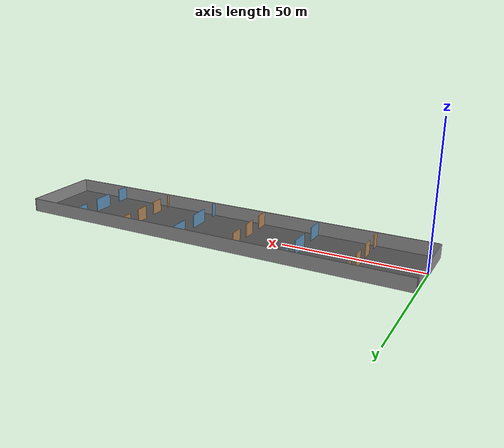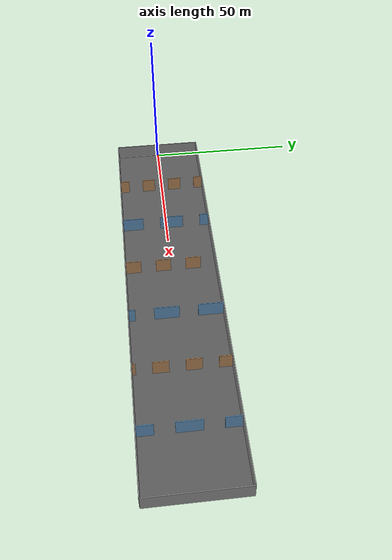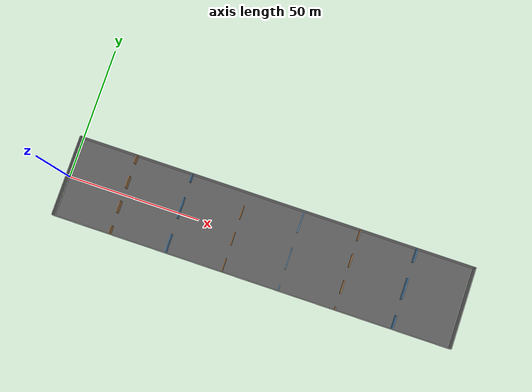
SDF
<?xml version="1.0" ?>
<sdf version="1.5">
  <world name="default">
    <include>
      <uri>model://sun</uri>
    </include>

    <scene>
      <ambient>0.45 0.45 0.45 1</ambient>
      <background>0.82 0.88 0.95 1</background>
      <shadows>true</shadows>
    </scene>

    <gui fullscreen="0">
      <camera name="user_camera">
        <pose>75 0 90 0 1.35 0</pose>
        <view_controller>fps</view_controller>
        <projection_type>perspective</projection_type>
      </camera>
    </gui>

    <physics name="default_physics" default="0" type="ode">
      <gravity>0 0 -9.8066</gravity>
      <ode>
        <solver>
          <type>quick</type>
          <iters>10</iters>
          <sor>1.3</sor>
          <use_dynamic_moi_rescaling>0</use_dynamic_moi_rescaling>
        </solver>
        <constraints>
          <cfm>0</cfm>
          <erp>0.2</erp>
          <contact_max_correcting_vel>100</contact_max_correcting_vel>
          <contact_surface_layer>0.001</contact_surface_layer>
        </constraints>
      </ode>
      <max_step_size>0.004</max_step_size>
      <real_time_factor>1</real_time_factor>
      <real_time_update_rate>250</real_time_update_rate>
      <magnetic_field>6.0e-6 2.3e-5 -4.2e-5</magnetic_field>
    </physics>

    <model name="corridor_floor">
      <static>true</static>
      <pose>75 0 0.01 0 0 0</pose>
      <link name="link">
        <collision name="collision">
          <geometry>
            <box>
              <size>150 30 0.02</size>
            </box>
          </geometry>
        </collision>
        <visual name="visual">
          <geometry>
            <box>
              <size>150 30 0.02</size>
            </box>
          </geometry>
          <material>
            <ambient>0.25 0.25 0.25 1</ambient>
            <diffuse>0.35 0.35 0.35 1</diffuse>
          </material>
        </visual>
      </link>
    </model>

    <model name="left_wall">
      <static>true</static>
      <pose>75 15.15 2.5 0 0 0</pose>
      <link name="link">
        <collision name="collision">
          <geometry>
            <box>
              <size>150 0.3 5</size>
            </box>
          </geometry>
        </collision>
        <visual name="visual">
          <geometry>
            <box>
              <size>150 0.3 5</size>
            </box>
          </geometry>
          <material>
            <ambient>0.45 0.45 0.45 1</ambient>
            <diffuse>0.55 0.55 0.55 1</diffuse>
          </material>
        </visual>
      </link>
    </model>

    <model name="right_wall">
      <static>true</static>
      <pose>75 -15.15 2.5 0 0 0</pose>
      <link name="link">
        <collision name="collision">
          <geometry>
            <box>
              <size>150 0.3 5</size>
            </box>
          </geometry>
        </collision>
        <visual name="visual">
          <geometry>
            <box>
              <size>150 0.3 5</size>
            </box>
          </geometry>
          <material>
            <ambient>0.45 0.45 0.45 1</ambient>
            <diffuse>0.55 0.55 0.55 1</diffuse>
          </material>
        </visual>
      </link>
    </model>

    <model name="start_wall">
      <static>true</static>
      <pose>-0.3 0 2.5 0 0 0</pose>
      <link name="link">
        <collision name="collision">
          <geometry>
            <box>
              <size>0.3 30.3 5</size>
            </box>
          </geometry>
        </collision>
        <visual name="visual">
          <geometry>
            <box>
              <size>0.3 30.3 5</size>
            </box>
          </geometry>
          <material>
            <ambient>0.45 0.45 0.45 1</ambient>
            <diffuse>0.55 0.55 0.55 1</diffuse>
          </material>
        </visual>
      </link>
    </model>

    <model name="end_wall">
      <static>true</static>
      <pose>150.3 0 2.5 0 0 0</pose>
      <link name="link">
        <collision name="collision">
          <geometry>
            <box>
              <size>0.3 30.3 5</size>
            </box>
          </geometry>
        </collision>
        <visual name="visual">
          <geometry>
            <box>
              <size>0.3 30.3 5</size>
            </box>
          </geometry>
          <material>
            <ambient>0.45 0.45 0.45 1</ambient>
            <diffuse>0.55 0.55 0.55 1</diffuse>
          </material>
        </visual>
      </link>
    </model>

    <!-- Row 01: 3-slit wall, openings y=[-12,-7], [-2.5,2.5], [7,12] -->
    <model name="slit_row_01_seg_01">
      <static>true</static>
      <pose>21.43 -13.5 2.5 0 0 0</pose>
      <link name="link">
        <collision name="collision">
          <geometry>
            <box>
              <size>0.3 3 5</size>
            </box>
          </geometry>
        </collision>
        <visual name="visual">
          <geometry>
            <box>
              <size>0.3 3 5</size>
            </box>
          </geometry>
          <material>
            <ambient>0.55 0.42 0.30 1</ambient>
            <diffuse>0.70 0.52 0.34 1</diffuse>
          </material>
        </visual>
      </link>
    </model>
    <model name="slit_row_01_seg_02">
      <static>true</static>
      <pose>21.43 -4.75 2.5 0 0 0</pose>
      <link name="link">
        <collision name="collision">
          <geometry>
            <box>
              <size>0.3 4.5 5</size>
            </box>
          </geometry>
        </collision>
        <visual name="visual">
          <geometry>
            <box>
              <size>0.3 4.5 5</size>
            </box>
          </geometry>
          <material>
            <ambient>0.55 0.42 0.30 1</ambient>
            <diffuse>0.70 0.52 0.34 1</diffuse>
          </material>
        </visual>
      </link>
    </model>
    <model name="slit_row_01_seg_03">
      <static>true</static>
      <pose>21.43 4.75 2.5 0 0 0</pose>
      <link name="link">
        <collision name="collision">
          <geometry>
            <box>
              <size>0.3 4.5 5</size>
            </box>
          </geometry>
        </collision>
        <visual name="visual">
          <geometry>
            <box>
              <size>0.3 4.5 5</size>
            </box>
          </geometry>
          <material>
            <ambient>0.55 0.42 0.30 1</ambient>
            <diffuse>0.70 0.52 0.34 1</diffuse>
          </material>
        </visual>
      </link>
    </model>
    <model name="slit_row_01_seg_04">
      <static>true</static>
      <pose>21.43 13.5 2.5 0 0 0</pose>
      <link name="link">
        <collision name="collision">
          <geometry>
            <box>
              <size>0.3 3 5</size>
            </box>
          </geometry>
        </collision>
        <visual name="visual">
          <geometry>
            <box>
              <size>0.3 3 5</size>
            </box>
          </geometry>
          <material>
            <ambient>0.55 0.42 0.30 1</ambient>
            <diffuse>0.70 0.52 0.34 1</diffuse>
          </material>
        </visual>
      </link>
    </model>

    <!-- Row 02: 2-slit wall, openings y=[-8,-2], [6,12] -->
    <model name="slit_row_02_seg_01">
      <static>true</static>
      <pose>42.86 -11.5 2.5 0 0 0</pose>
      <link name="link">
        <collision name="collision">
          <geometry>
            <box>
              <size>0.3 7 5</size>
            </box>
          </geometry>
        </collision>
        <visual name="visual">
          <geometry>
            <box>
              <size>0.3 7 5</size>
            </box>
          </geometry>
          <material>
            <ambient>0.30 0.43 0.55 1</ambient>
            <diffuse>0.36 0.56 0.72 1</diffuse>
          </material>
        </visual>
      </link>
    </model>
    <model name="slit_row_02_seg_02">
      <static>true</static>
      <pose>42.86 2 2.5 0 0 0</pose>
      <link name="link">
        <collision name="collision">
          <geometry>
            <box>
              <size>0.3 8 5</size>
            </box>
          </geometry>
        </collision>
        <visual name="visual">
          <geometry>
            <box>
              <size>0.3 8 5</size>
            </box>
          </geometry>
          <material>
            <ambient>0.30 0.43 0.55 1</ambient>
            <diffuse>0.36 0.56 0.72 1</diffuse>
          </material>
        </visual>
      </link>
    </model>
    <model name="slit_row_02_seg_03">
      <static>true</static>
      <pose>42.86 13.5 2.5 0 0 0</pose>
      <link name="link">
        <collision name="collision">
          <geometry>
            <box>
              <size>0.3 3 5</size>
            </box>
          </geometry>
        </collision>
        <visual name="visual">
          <geometry>
            <box>
              <size>0.3 3 5</size>
            </box>
          </geometry>
          <material>
            <ambient>0.30 0.43 0.55 1</ambient>
            <diffuse>0.36 0.56 0.72 1</diffuse>
          </material>
        </visual>
      </link>
    </model>

    <!-- Row 03: 3-slit wall, openings y=[-10,-5], [0,5], [10,15] -->
    <model name="slit_row_03_seg_01">
      <static>true</static>
      <pose>64.29 -12.5 2.5 0 0 0</pose>
      <link name="link">
        <collision name="collision">
          <geometry>
            <box>
              <size>0.3 5 5</size>
            </box>
          </geometry>
        </collision>
        <visual name="visual">
          <geometry>
            <box>
              <size>0.3 5 5</size>
            </box>
          </geometry>
          <material>
            <ambient>0.55 0.42 0.30 1</ambient>
            <diffuse>0.70 0.52 0.34 1</diffuse>
          </material>
        </visual>
      </link>
    </model>
    <model name="slit_row_03_seg_02">
      <static>true</static>
      <pose>64.29 -2.5 2.5 0 0 0</pose>
      <link name="link">
        <collision name="collision">
          <geometry>
            <box>
              <size>0.3 5 5</size>
            </box>
          </geometry>
        </collision>
        <visual name="visual">
          <geometry>
            <box>
              <size>0.3 5 5</size>
            </box>
          </geometry>
          <material>
            <ambient>0.55 0.42 0.30 1</ambient>
            <diffuse>0.70 0.52 0.34 1</diffuse>
          </material>
        </visual>
      </link>
    </model>
    <model name="slit_row_03_seg_03">
      <static>true</static>
      <pose>64.29 7.5 2.5 0 0 0</pose>
      <link name="link">
        <collision name="collision">
          <geometry>
            <box>
              <size>0.3 5 5</size>
            </box>
          </geometry>
        </collision>
        <visual name="visual">
          <geometry>
            <box>
              <size>0.3 5 5</size>
            </box>
          </geometry>
          <material>
            <ambient>0.55 0.42 0.30 1</ambient>
            <diffuse>0.70 0.52 0.34 1</diffuse>
          </material>
        </visual>
      </link>
    </model>

    <!-- Row 04: 2-slit wall, openings y=[-13,-7], [1,7] -->
    <model name="slit_row_04_seg_01">
      <static>true</static>
      <pose>85.71 -14 2.5 0 0 0</pose>
      <link name="link">
        <collision name="collision">
          <geometry>
            <box>
              <size>0.3 2 5</size>
            </box>
          </geometry>
        </collision>
        <visual name="visual">
          <geometry>
            <box>
              <size>0.3 2 5</size>
            </box>
          </geometry>
          <material>
            <ambient>0.30 0.43 0.55 1</ambient>
            <diffuse>0.36 0.56 0.72 1</diffuse>
          </material>
        </visual>
      </link>
    </model>
    <model name="slit_row_04_seg_02">
      <static>true</static>
      <pose>85.71 -3 2.5 0 0 0</pose>
      <link name="link">
        <collision name="collision">
          <geometry>
            <box>
              <size>0.3 8 5</size>
            </box>
          </geometry>
        </collision>
        <visual name="visual">
          <geometry>
            <box>
              <size>0.3 8 5</size>
            </box>
          </geometry>
          <material>
            <ambient>0.30 0.43 0.55 1</ambient>
            <diffuse>0.36 0.56 0.72 1</diffuse>
          </material>
        </visual>
      </link>
    </model>
    <model name="slit_row_04_seg_03">
      <static>true</static>
      <pose>85.71 11 2.5 0 0 0</pose>
      <link name="link">
        <collision name="collision">
          <geometry>
            <box>
              <size>0.3 8 5</size>
            </box>
          </geometry>
        </collision>
        <visual name="visual">
          <geometry>
            <box>
              <size>0.3 8 5</size>
            </box>
          </geometry>
          <material>
            <ambient>0.30 0.43 0.55 1</ambient>
            <diffuse>0.36 0.56 0.72 1</diffuse>
          </material>
        </visual>
      </link>
    </model>

    <!-- Row 05: 3-slit wall, openings y=[-14,-9], [-4,1], [6,11] -->
    <model name="slit_row_05_seg_01">
      <static>true</static>
      <pose>107.14 -14.5 2.5 0 0 0</pose>
      <link name="link">
        <collision name="collision">
          <geometry>
            <box>
              <size>0.3 1 5</size>
            </box>
          </geometry>
        </collision>
        <visual name="visual">
          <geometry>
            <box>
              <size>0.3 1 5</size>
            </box>
          </geometry>
          <material>
            <ambient>0.55 0.42 0.30 1</ambient>
            <diffuse>0.70 0.52 0.34 1</diffuse>
          </material>
        </visual>
      </link>
    </model>
    <model name="slit_row_05_seg_02">
      <static>true</static>
      <pose>107.14 -6.5 2.5 0 0 0</pose>
      <link name="link">
        <collision name="collision">
          <geometry>
            <box>
              <size>0.3 5 5</size>
            </box>
          </geometry>
        </collision>
        <visual name="visual">
          <geometry>
            <box>
              <size>0.3 5 5</size>
            </box>
          </geometry>
          <material>
            <ambient>0.55 0.42 0.30 1</ambient>
            <diffuse>0.70 0.52 0.34 1</diffuse>
          </material>
        </visual>
      </link>
    </model>
    <model name="slit_row_05_seg_03">
      <static>true</static>
      <pose>107.14 3.5 2.5 0 0 0</pose>
      <link name="link">
        <collision name="collision">
          <geometry>
            <box>
              <size>0.3 5 5</size>
            </box>
          </geometry>
        </collision>
        <visual name="visual">
          <geometry>
            <box>
              <size>0.3 5 5</size>
            </box>
          </geometry>
          <material>
            <ambient>0.55 0.42 0.30 1</ambient>
            <diffuse>0.70 0.52 0.34 1</diffuse>
          </material>
        </visual>
      </link>
    </model>
    <model name="slit_row_05_seg_04">
      <static>true</static>
      <pose>107.14 13 2.5 0 0 0</pose>
      <link name="link">
        <collision name="collision">
          <geometry>
            <box>
              <size>0.3 4 5</size>
            </box>
          </geometry>
        </collision>
        <visual name="visual">
          <geometry>
            <box>
              <size>0.3 4 5</size>
            </box>
          </geometry>
          <material>
            <ambient>0.55 0.42 0.30 1</ambient>
            <diffuse>0.70 0.52 0.34 1</diffuse>
          </material>
        </visual>
      </link>
    </model>

    <!-- Row 06: 2-slit wall, openings y=[-10,-4], [4,10] -->
    <model name="slit_row_06_seg_01">
      <static>true</static>
      <pose>128.57 -12.5 2.5 0 0 0</pose>
      <link name="link">
        <collision name="collision">
          <geometry>
            <box>
              <size>0.3 5 5</size>
            </box>
          </geometry>
        </collision>
        <visual name="visual">
          <geometry>
            <box>
              <size>0.3 5 5</size>
            </box>
          </geometry>
          <material>
            <ambient>0.30 0.43 0.55 1</ambient>
            <diffuse>0.36 0.56 0.72 1</diffuse>
          </material>
        </visual>
      </link>
    </model>
    <model name="slit_row_06_seg_02">
      <static>true</static>
      <pose>128.57 0 2.5 0 0 0</pose>
      <link name="link">
        <collision name="collision">
          <geometry>
            <box>
              <size>0.3 8 5</size>
            </box>
          </geometry>
        </collision>
        <visual name="visual">
          <geometry>
            <box>
              <size>0.3 8 5</size>
            </box>
          </geometry>
          <material>
            <ambient>0.30 0.43 0.55 1</ambient>
            <diffuse>0.36 0.56 0.72 1</diffuse>
          </material>
        </visual>
      </link>
    </model>
    <model name="slit_row_06_seg_03">
      <static>true</static>
      <pose>128.57 12.5 2.5 0 0 0</pose>
      <link name="link">
        <collision name="collision">
          <geometry>
            <box>
              <size>0.3 5 5</size>
            </box>
          </geometry>
        </collision>
        <visual name="visual">
          <geometry>
            <box>
              <size>0.3 5 5</size>
            </box>
          </geometry>
          <material>
            <ambient>0.30 0.43 0.55 1</ambient>
            <diffuse>0.36 0.56 0.72 1</diffuse>
          </material>
        </visual>
      </link>
    </model>
  </world>
</sdf>
